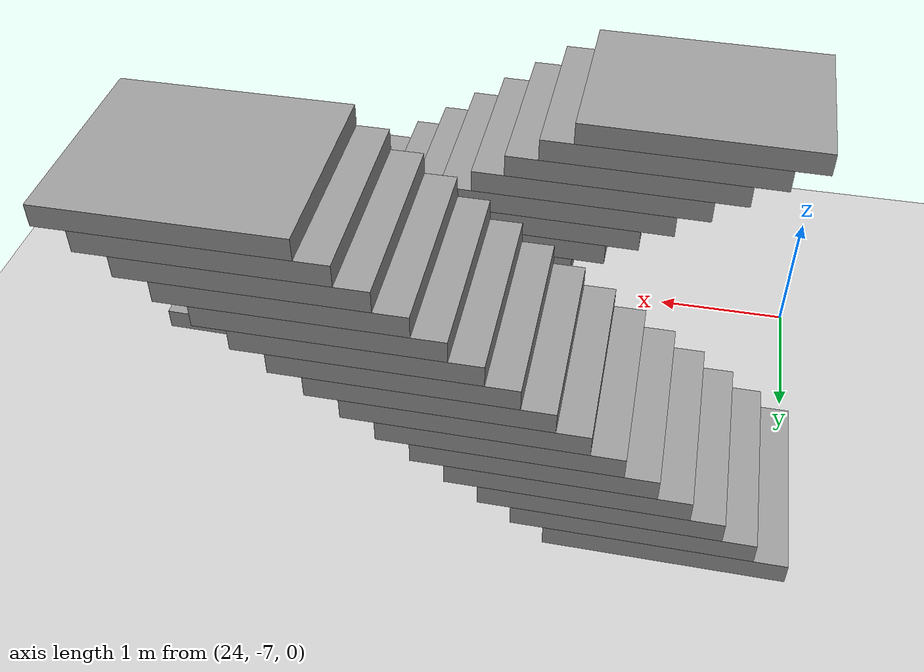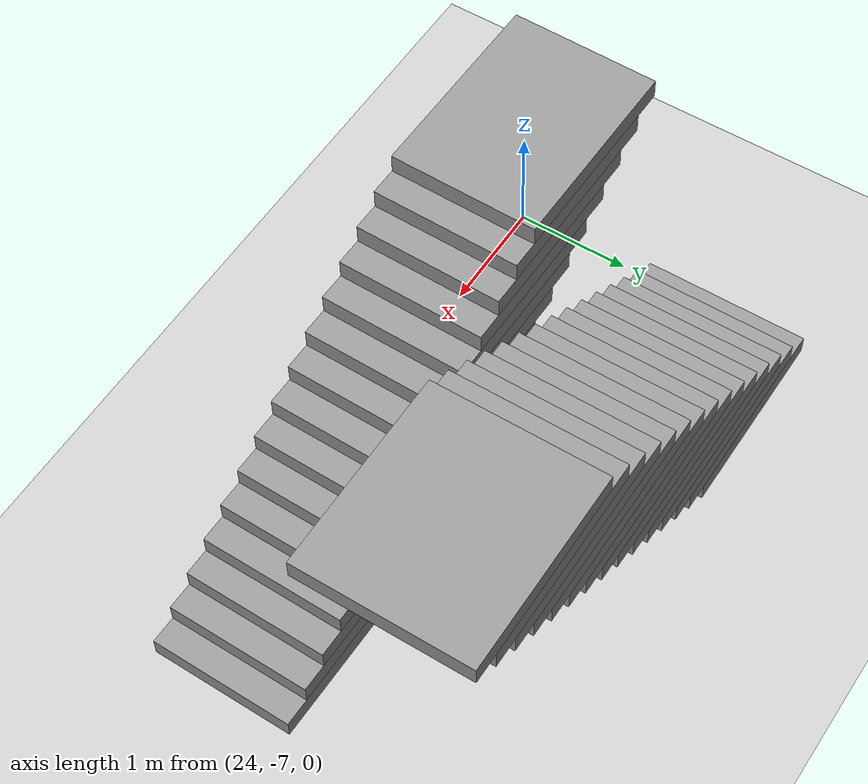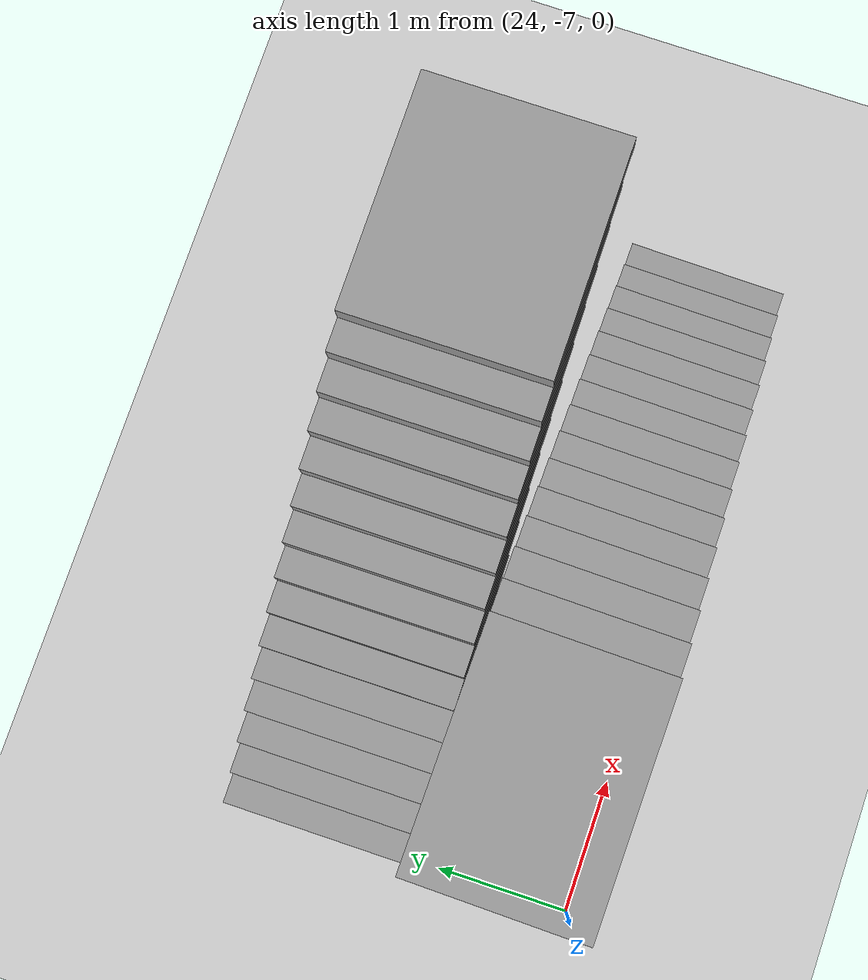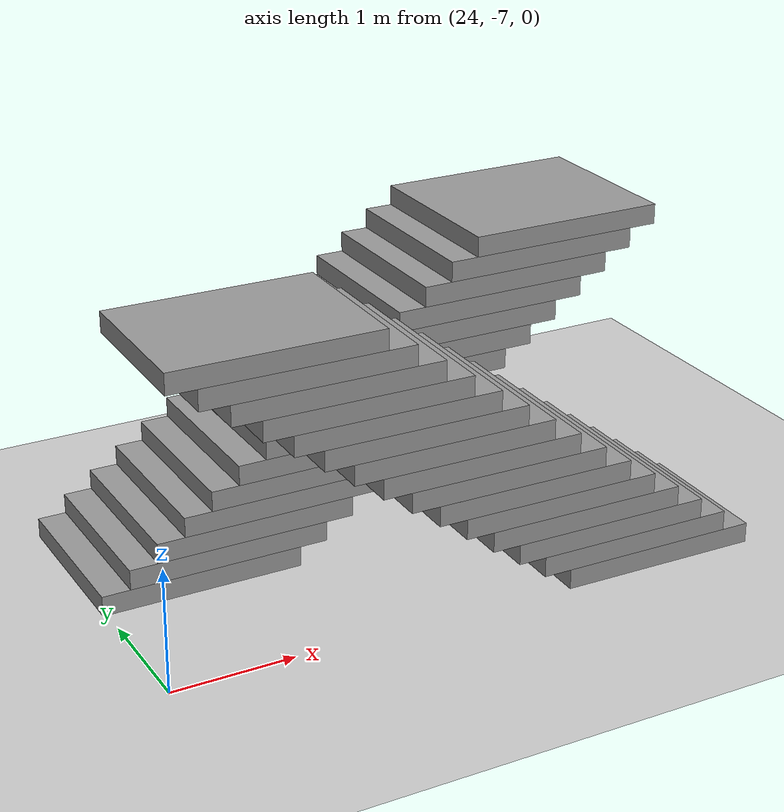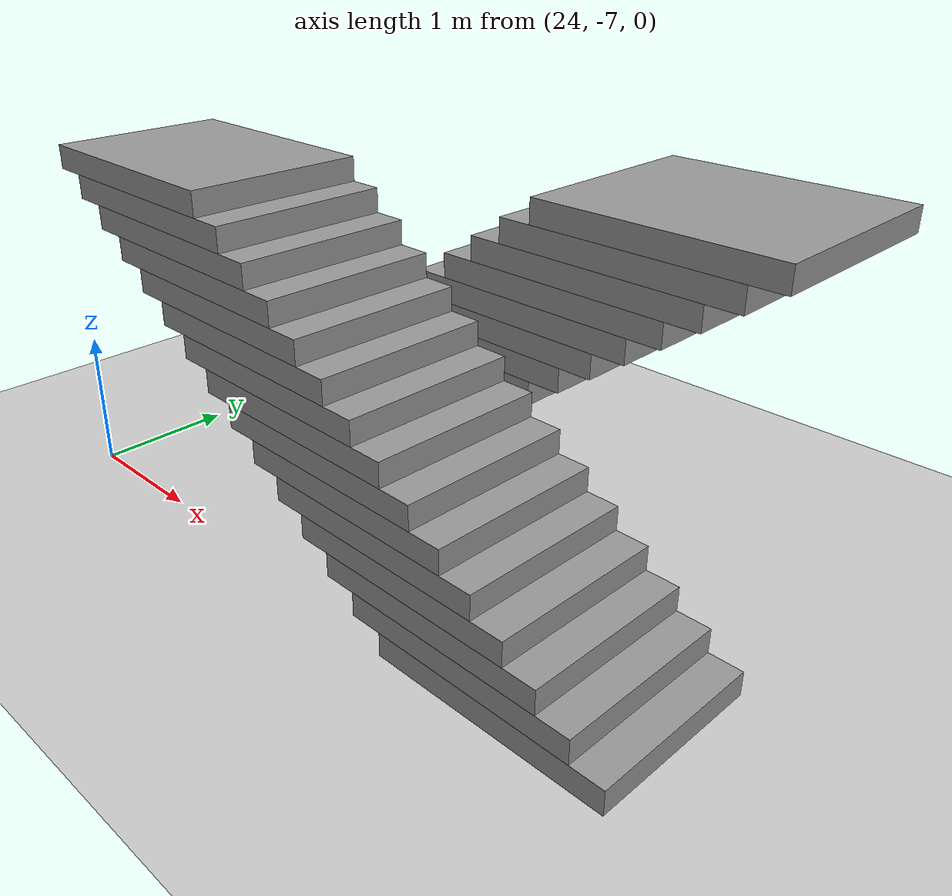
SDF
<sdf version="1.6">
 <world name="default">
  <model name="ground_plane">
   <static>1</static>
   <link name="link">
    <collision name="collision">
     <geometry><plane><normal>0 0 1</normal><size>100 100</size></plane></geometry>
     <surface><friction><ode><mu>100</mu><mu2>50</mu2></ode></friction></surface>
    </collision>
    <visual name="visual">
     <cast_shadows>0</cast_shadows>
     <geometry><plane><normal>0 0 1</normal><size>100 100</size></plane></geometry>
     <material>
      <script><uri>file://media/materials/scripts/gazebo.material</uri><name>Gazebo/Grey</name></script>
     </material>
    </visual>
   </link>
  </model>
  <model name="Staircase_0">
   <link name="Stairs_0">
    <inertial>
     <inertia><ixx>0</ixx><ixy>0</ixy><ixz>0</ixz><iyy>0</iyy><iyz>0</iyz><izz>0</izz></inertia>
     <mass>0</mass>
    </inertial>
    <pose>0.114971 -0.080794 0 0 -0 0</pose>
    <visual name="Stairs_0_Visual_1">
     <pose>-1.4 -0 0.25 0 -0 1.5708</pose>
     <geometry><box><size>1.44379 1.67338 0.166667</size></box></geometry>
     <material>
      <script><uri>file://media/materials/scripts/gazebo.material</uri><name>Gazebo/Grey</name></script>
      <ambient>1 1 1 1</ambient>
      <shader type="pixel"/>
     </material>
     <meta><layer>0</layer></meta>
    </visual>
    <visual name="Stairs_0_Visual_3">
     <pose>-0.933333 -0 0.583333 0 -0 1.5708</pose>
     <geometry><box><size>1.44379 1.67338 0.166667</size></box></geometry>
     <material>
      <script><uri>file://media/materials/scripts/gazebo.material</uri><name>Gazebo/Grey</name></script>
      <ambient>1 1 1 1</ambient>
      <shader type="pixel"/>
     </material>
     <meta><layer>0</layer></meta>
    </visual>
    <visual name="Stairs_0_Visual_5">
     <pose>-0.466667 0 0.916667 0 -0 1.5708</pose>
     <geometry><box><size>1.44379 1.67338 0.166667</size></box></geometry>
     <material>
      <script><uri>file://media/materials/scripts/gazebo.material</uri><name>Gazebo/Grey</name></script>
      <ambient>1 1 1 1</ambient>
      <shader type="pixel"/>
     </material>
     <meta><layer>0</layer></meta>
    </visual>
    <visual name="Stairs_0_Visual_4">
     <pose>-0.7 0 0.75 0 -0 1.5708</pose>
     <geometry><box><size>1.44379 1.67338 0.166667</size></box></geometry>
     <material>
      <script><uri>file://media/materials/scripts/gazebo.material</uri><name>Gazebo/Grey</name></script>
      <ambient>1 1 1 1</ambient>
      <shader type="pixel"/>
     </material>
     <meta><layer>0</layer></meta>
    </visual>
    <visual name="Stairs_0_Visual_9">
     <pose>0.466667 0 1.58333 0 -0 1.5708</pose>
     <geometry><box><size>1.44379 1.67338 0.166667</size></box></geometry>
     <material>
      <script><uri>file://media/materials/scripts/gazebo.material</uri><name>Gazebo/Grey</name></script>
      <ambient>1 1 1 1</ambient>
      <shader type="pixel"/>
     </material>
     <meta><layer>0</layer></meta>
    </visual>
    <visual name="Stairs_0_Visual_10">
     <pose>0.7 0 1.75 0 -0 1.5708</pose>
     <geometry><box><size>1.44379 1.67338 0.166667</size></box></geometry>
     <material>
      <script><uri>file://media/materials/scripts/gazebo.material</uri><name>Gazebo/Grey</name></script>
      <ambient>1 1 1 1</ambient>
      <shader type="pixel"/>
     </material>
     <meta><layer>0</layer></meta>
    </visual>
    <visual name="Stairs_0_Visual_11">
     <pose>0.933334 0 1.91667 0 -0 1.5708</pose>
     <geometry><box><size>1.44379 1.67338 0.166667</size></box></geometry>
     <material>
      <script><uri>file://media/materials/scripts/gazebo.material</uri><name>Gazebo/Grey</name></script>
      <ambient>1 1 1 1</ambient>
      <shader type="pixel"/>
     </material>
     <meta><layer>0</layer></meta>
    </visual>
    <visual name="Stairs_0_Visual_12">
     <pose>1.16667 0 2.08333 0 -0 1.5708</pose>
     <geometry><box><size>1.44379 1.67338 0.166667</size></box></geometry>
     <material>
      <script><uri>file://media/materials/scripts/gazebo.material</uri><name>Gazebo/Grey</name></script>
      <ambient>1 1 1 1</ambient>
      <shader type="pixel"/>
     </material>
     <meta><layer>0</layer></meta>
    </visual>
    <visual name="Stairs_0_Visual_13">
     <pose>1.4 0 2.25 0 -0 1.5708</pose>
     <geometry><box><size>1.44379 1.67338 0.166667</size></box></geometry>
     <material>
      <script><uri>file://media/materials/scripts/gazebo.material</uri><name>Gazebo/Grey</name></script>
      <ambient>1 1 1 1</ambient>
      <shader type="pixel"/>
     </material>
     <meta><layer>0</layer></meta>
    </visual>
    <visual name="Stairs_0_Visual_14">
     <pose>1.63333 0 2.41667 0 -0 1.5708</pose>
     <geometry><box><size>1.44379 1.67338 0.166667</size></box></geometry>
     <material>
      <script><uri>file://media/materials/scripts/gazebo.material</uri><name>Gazebo/Grey</name></script>
      <ambient>1 1 1 1</ambient>
      <shader type="pixel"/>
     </material>
     <meta><layer>0</layer></meta>
    </visual>
    <visual name="Stairs_0_Visual_7">
     <pose>0 0 1.25 0 -0 1.5708</pose>
     <geometry><box><size>1.44379 1.67338 0.166667</size></box></geometry>
     <material>
      <script><uri>file://media/materials/scripts/gazebo.material</uri><name>Gazebo/Grey</name></script>
      <ambient>1 1 1 1</ambient>
      <shader type="pixel"/>
     </material>
     <meta><layer>0</layer></meta>
    </visual>
    <visual name="Stairs_0_Visual_8">
     <pose>0.233333 0 1.41667 0 -0 1.5708</pose>
     <geometry><box><size>1.44379 1.67338 0.166667</size></box></geometry>
     <material>
      <script><uri>file://media/materials/scripts/gazebo.material</uri><name>Gazebo/Grey</name></script>
      <ambient>1 1 1 1</ambient>
      <shader type="pixel"/>
     </material>
     <meta><layer>0</layer></meta>
    </visual>
    <visual name="Stairs_0_Visual_6">
     <pose>-0.233333 0 1.08333 0 -0 1.5708</pose>
     <geometry><box><size>1.44379 1.67338 0.166667</size></box></geometry>
     <material>
      <script><uri>file://media/materials/scripts/gazebo.material</uri><name>Gazebo/Grey</name></script>
      <ambient>1 1 1 1</ambient>
      <shader type="pixel"/>
     </material>
     <meta><layer>0</layer></meta>
    </visual>
    <visual name="Stairs_0_Visual_0">
     <pose>-1.63333 -0 0.083333 0 -0 1.5708</pose>
     <geometry><box><size>1.44379 1.67338 0.166667</size></box></geometry>
     <material>
      <script><uri>file://media/materials/scripts/gazebo.material</uri><name>Gazebo/Grey</name></script>
      <ambient>1 1 1 1</ambient>
      <shader type="pixel"/>
     </material>
     <meta><layer>0</layer></meta>
    </visual>
    <visual name="Stairs_0_Visual_2">
     <pose>-1.16667 -0 0.416667 0 -0 1.5708</pose>
     <geometry><box><size>1.44379 1.67338 0.166667</size></box></geometry>
     <material>
      <script><uri>file://media/materials/scripts/gazebo.material</uri><name>Gazebo/Grey</name></script>
      <ambient>1 1 1 1</ambient>
      <shader type="pixel"/>
     </material>
     <meta><layer>0</layer></meta>
    </visual>
    <collision name="Stairs_0_Collision_0">
     <pose>-1.63333 0 0.083333 0 -0 1.5708</pose>
     <geometry><box><size>1.44379 1.67338 0.166667</size></box></geometry>
     <surface>
      <friction>
       <ode><mu>1</mu><mu2>1</mu2><fdir1>0 0 0</fdir1><slip1>0</slip1><slip2>0</slip2></ode>
       <torsional>
        <coefficient>1</coefficient>
        <patch_radius>0</patch_radius>
        <surface_radius>0</surface_radius>
        <use_patch_radius>1</use_patch_radius>
        <ode><slip>0</slip></ode>
       </torsional>
      </friction>
      <bounce><restitution_coefficient>0</restitution_coefficient><threshold>1e+06</threshold></bounce>
      <contact>
       <collide_without_contact>0</collide_without_contact>
       <collide_without_contact_bitmask>1</collide_without_contact_bitmask>
       <collide_bitmask>1</collide_bitmask>
       <ode>
        <soft_cfm>0</soft_cfm>
        <soft_erp>0.2</soft_erp>
        <kp>1e+13</kp>
        <kd>1</kd>
        <max_vel>0.01</max_vel>
        <min_depth>0</min_depth>
       </ode>
       <bullet>
        <split_impulse>1</split_impulse>
        <split_impulse_penetration_threshold>-0.01</split_impulse_penetration_threshold>
        <soft_cfm>0</soft_cfm>
        <soft_erp>0.2</soft_erp>
        <kp>1e+13</kp>
        <kd>1</kd>
       </bullet>
      </contact>
     </surface>
    </collision>
    <collision name="Stairs_0_Collision_1">
     <pose>-1.4 0 0.25 0 -0 1.5708</pose>
     <geometry><box><size>1.44379 1.67338 0.166667</size></box></geometry>
     <surface>
      <friction>
       <ode><mu>1</mu><mu2>1</mu2><fdir1>0 0 0</fdir1><slip1>0</slip1><slip2>0</slip2></ode>
       <torsional>
        <coefficient>1</coefficient>
        <patch_radius>0</patch_radius>
        <surface_radius>0</surface_radius>
        <use_patch_radius>1</use_patch_radius>
        <ode><slip>0</slip></ode>
       </torsional>
      </friction>
      <bounce><restitution_coefficient>0</restitution_coefficient><threshold>1e+06</threshold></bounce>
      <contact>
       <collide_without_contact>0</collide_without_contact>
       <collide_without_contact_bitmask>1</collide_without_contact_bitmask>
       <collide_bitmask>1</collide_bitmask>
       <ode>
        <soft_cfm>0</soft_cfm>
        <soft_erp>0.2</soft_erp>
        <kp>1e+13</kp>
        <kd>1</kd>
        <max_vel>0.01</max_vel>
        <min_depth>0</min_depth>
       </ode>
       <bullet>
        <split_impulse>1</split_impulse>
        <split_impulse_penetration_threshold>-0.01</split_impulse_penetration_threshold>
        <soft_cfm>0</soft_cfm>
        <soft_erp>0.2</soft_erp>
        <kp>1e+13</kp>
        <kd>1</kd>
       </bullet>
      </contact>
     </surface>
    </collision>
    <collision name="Stairs_0_Collision_2">
     <pose>-1.16667 0 0.416667 0 -0 1.5708</pose>
     <geometry><box><size>1.44379 1.67338 0.166667</size></box></geometry>
     <surface>
      <friction>
       <ode><mu>1</mu><mu2>1</mu2><fdir1>0 0 0</fdir1><slip1>0</slip1><slip2>0</slip2></ode>
       <torsional>
        <coefficient>1</coefficient>
        <patch_radius>0</patch_radius>
        <surface_radius>0</surface_radius>
        <use_patch_radius>1</use_patch_radius>
        <ode><slip>0</slip></ode>
       </torsional>
      </friction>
      <bounce><restitution_coefficient>0</restitution_coefficient><threshold>1e+06</threshold></bounce>
      <contact>
       <collide_without_contact>0</collide_without_contact>
       <collide_without_contact_bitmask>1</collide_without_contact_bitmask>
       <collide_bitmask>1</collide_bitmask>
       <ode>
        <soft_cfm>0</soft_cfm>
        <soft_erp>0.2</soft_erp>
        <kp>1e+13</kp>
        <kd>1</kd>
        <max_vel>0.01</max_vel>
        <min_depth>0</min_depth>
       </ode>
       <bullet>
        <split_impulse>1</split_impulse>
        <split_impulse_penetration_threshold>-0.01</split_impulse_penetration_threshold>
        <soft_cfm>0</soft_cfm>
        <soft_erp>0.2</soft_erp>
        <kp>1e+13</kp>
        <kd>1</kd>
       </bullet>
      </contact>
     </surface>
    </collision>
    <collision name="Stairs_0_Collision_3">
     <pose>-0.933333 0 0.583333 0 -0 1.5708</pose>
     <geometry><box><size>1.44379 1.67338 0.166667</size></box></geometry>
     <surface>
      <friction>
       <ode><mu>1</mu><mu2>1</mu2><fdir1>0 0 0</fdir1><slip1>0</slip1><slip2>0</slip2></ode>
       <torsional>
        <coefficient>1</coefficient>
        <patch_radius>0</patch_radius>
        <surface_radius>0</surface_radius>
        <use_patch_radius>1</use_patch_radius>
        <ode><slip>0</slip></ode>
       </torsional>
      </friction>
      <bounce><restitution_coefficient>0</restitution_coefficient><threshold>1e+06</threshold></bounce>
      <contact>
       <collide_without_contact>0</collide_without_contact>
       <collide_without_contact_bitmask>1</collide_without_contact_bitmask>
       <collide_bitmask>1</collide_bitmask>
       <ode>
        <soft_cfm>0</soft_cfm>
        <soft_erp>0.2</soft_erp>
        <kp>1e+13</kp>
        <kd>1</kd>
        <max_vel>0.01</max_vel>
        <min_depth>0</min_depth>
       </ode>
       <bullet>
        <split_impulse>1</split_impulse>
        <split_impulse_penetration_threshold>-0.01</split_impulse_penetration_threshold>
        <soft_cfm>0</soft_cfm>
        <soft_erp>0.2</soft_erp>
        <kp>1e+13</kp>
        <kd>1</kd>
       </bullet>
      </contact>
     </surface>
    </collision>
    <collision name="Stairs_0_Collision_4">
     <pose>-0.7 0 0.75 0 -0 1.5708</pose>
     <geometry><box><size>1.44379 1.67338 0.166667</size></box></geometry>
     <surface>
      <friction>
       <ode><mu>1</mu><mu2>1</mu2><fdir1>0 0 0</fdir1><slip1>0</slip1><slip2>0</slip2></ode>
       <torsional>
        <coefficient>1</coefficient>
        <patch_radius>0</patch_radius>
        <surface_radius>0</surface_radius>
        <use_patch_radius>1</use_patch_radius>
        <ode><slip>0</slip></ode>
       </torsional>
      </friction>
      <bounce><restitution_coefficient>0</restitution_coefficient><threshold>1e+06</threshold></bounce>
      <contact>
       <collide_without_contact>0</collide_without_contact>
       <collide_without_contact_bitmask>1</collide_without_contact_bitmask>
       <collide_bitmask>1</collide_bitmask>
       <ode>
        <soft_cfm>0</soft_cfm>
        <soft_erp>0.2</soft_erp>
        <kp>1e+13</kp>
        <kd>1</kd>
        <max_vel>0.01</max_vel>
        <min_depth>0</min_depth>
       </ode>
       <bullet>
        <split_impulse>1</split_impulse>
        <split_impulse_penetration_threshold>-0.01</split_impulse_penetration_threshold>
        <soft_cfm>0</soft_cfm>
        <soft_erp>0.2</soft_erp>
        <kp>1e+13</kp>
        <kd>1</kd>
       </bullet>
      </contact>
     </surface>
    </collision>
    <collision name="Stairs_0_Collision_5">
     <pose>-0.466667 0 0.916667 0 -0 1.5708</pose>
     <geometry><box><size>1.44379 1.67338 0.166667</size></box></geometry>
     <surface>
      <friction>
       <ode><mu>1</mu><mu2>1</mu2><fdir1>0 0 0</fdir1><slip1>0</slip1><slip2>0</slip2></ode>
       <torsional>
        <coefficient>1</coefficient>
        <patch_radius>0</patch_radius>
        <surface_radius>0</surface_radius>
        <use_patch_radius>1</use_patch_radius>
        <ode><slip>0</slip></ode>
       </torsional>
      </friction>
      <bounce><restitution_coefficient>0</restitution_coefficient><threshold>1e+06</threshold></bounce>
      <contact>
       <collide_without_contact>0</collide_without_contact>
       <collide_without_contact_bitmask>1</collide_without_contact_bitmask>
       <collide_bitmask>1</collide_bitmask>
       <ode>
        <soft_cfm>0</soft_cfm>
        <soft_erp>0.2</soft_erp>
        <kp>1e+13</kp>
        <kd>1</kd>
        <max_vel>0.01</max_vel>
        <min_depth>0</min_depth>
       </ode>
       <bullet>
        <split_impulse>1</split_impulse>
        <split_impulse_penetration_threshold>-0.01</split_impulse_penetration_threshold>
        <soft_cfm>0</soft_cfm>
        <soft_erp>0.2</soft_erp>
        <kp>1e+13</kp>
        <kd>1</kd>
       </bullet>
      </contact>
     </surface>
    </collision>
    <collision name="Stairs_0_Collision_6">
     <pose>-0.233333 0 1.08333 0 -0 1.5708</pose>
     <geometry><box><size>1.44379 1.67338 0.166667</size></box></geometry>
     <surface>
      <friction>
       <ode><mu>1</mu><mu2>1</mu2><fdir1>0 0 0</fdir1><slip1>0</slip1><slip2>0</slip2></ode>
       <torsional>
        <coefficient>1</coefficient>
        <patch_radius>0</patch_radius>
        <surface_radius>0</surface_radius>
        <use_patch_radius>1</use_patch_radius>
        <ode><slip>0</slip></ode>
       </torsional>
      </friction>
      <bounce><restitution_coefficient>0</restitution_coefficient><threshold>1e+06</threshold></bounce>
      <contact>
       <collide_without_contact>0</collide_without_contact>
       <collide_without_contact_bitmask>1</collide_without_contact_bitmask>
       <collide_bitmask>1</collide_bitmask>
       <ode>
        <soft_cfm>0</soft_cfm>
        <soft_erp>0.2</soft_erp>
        <kp>1e+13</kp>
        <kd>1</kd>
        <max_vel>0.01</max_vel>
        <min_depth>0</min_depth>
       </ode>
       <bullet>
        <split_impulse>1</split_impulse>
        <split_impulse_penetration_threshold>-0.01</split_impulse_penetration_threshold>
        <soft_cfm>0</soft_cfm>
        <soft_erp>0.2</soft_erp>
        <kp>1e+13</kp>
        <kd>1</kd>
       </bullet>
      </contact>
     </surface>
    </collision>
    <collision name="Stairs_0_Collision_7">
     <pose>0 0 1.25 0 -0 1.5708</pose>
     <geometry><box><size>1.44379 1.67338 0.166667</size></box></geometry>
     <surface>
      <friction>
       <ode><mu>1</mu><mu2>1</mu2><fdir1>0 0 0</fdir1><slip1>0</slip1><slip2>0</slip2></ode>
       <torsional>
        <coefficient>1</coefficient>
        <patch_radius>0</patch_radius>
        <surface_radius>0</surface_radius>
        <use_patch_radius>1</use_patch_radius>
        <ode><slip>0</slip></ode>
       </torsional>
      </friction>
      <bounce><restitution_coefficient>0</restitution_coefficient><threshold>1e+06</threshold></bounce>
      <contact>
       <collide_without_contact>0</collide_without_contact>
       <collide_without_contact_bitmask>1</collide_without_contact_bitmask>
       <collide_bitmask>1</collide_bitmask>
       <ode>
        <soft_cfm>0</soft_cfm>
        <soft_erp>0.2</soft_erp>
        <kp>1e+13</kp>
        <kd>1</kd>
        <max_vel>0.01</max_vel>
        <min_depth>0</min_depth>
       </ode>
       <bullet>
        <split_impulse>1</split_impulse>
        <split_impulse_penetration_threshold>-0.01</split_impulse_penetration_threshold>
        <soft_cfm>0</soft_cfm>
        <soft_erp>0.2</soft_erp>
        <kp>1e+13</kp>
        <kd>1</kd>
       </bullet>
      </contact>
     </surface>
    </collision>
    <collision name="Stairs_0_Collision_8">
     <pose>0.233333 0 1.41667 0 -0 1.5708</pose>
     <geometry><box><size>1.44379 1.67338 0.166667</size></box></geometry>
     <surface>
      <friction>
       <ode><mu>1</mu><mu2>1</mu2><fdir1>0 0 0</fdir1><slip1>0</slip1><slip2>0</slip2></ode>
       <torsional>
        <coefficient>1</coefficient>
        <patch_radius>0</patch_radius>
        <surface_radius>0</surface_radius>
        <use_patch_radius>1</use_patch_radius>
        <ode><slip>0</slip></ode>
       </torsional>
      </friction>
      <bounce><restitution_coefficient>0</restitution_coefficient><threshold>1e+06</threshold></bounce>
      <contact>
       <collide_without_contact>0</collide_without_contact>
       <collide_without_contact_bitmask>1</collide_without_contact_bitmask>
       <collide_bitmask>1</collide_bitmask>
       <ode>
        <soft_cfm>0</soft_cfm>
        <soft_erp>0.2</soft_erp>
        <kp>1e+13</kp>
        <kd>1</kd>
        <max_vel>0.01</max_vel>
        <min_depth>0</min_depth>
       </ode>
       <bullet>
        <split_impulse>1</split_impulse>
        <split_impulse_penetration_threshold>-0.01</split_impulse_penetration_threshold>
        <soft_cfm>0</soft_cfm>
        <soft_erp>0.2</soft_erp>
        <kp>1e+13</kp>
        <kd>1</kd>
       </bullet>
      </contact>
     </surface>
    </collision>
    <collision name="Stairs_0_Collision_9">
     <pose>0.466667 0 1.58333 0 -0 1.5708</pose>
     <geometry><box><size>1.44379 1.67338 0.166667</size></box></geometry>
     <surface>
      <friction>
       <ode><mu>1</mu><mu2>1</mu2><fdir1>0 0 0</fdir1><slip1>0</slip1><slip2>0</slip2></ode>
       <torsional>
        <coefficient>1</coefficient>
        <patch_radius>0</patch_radius>
        <surface_radius>0</surface_radius>
        <use_patch_radius>1</use_patch_radius>
        <ode><slip>0</slip></ode>
       </torsional>
      </friction>
      <bounce><restitution_coefficient>0</restitution_coefficient><threshold>1e+06</threshold></bounce>
      <contact>
       <collide_without_contact>0</collide_without_contact>
       <collide_without_contact_bitmask>1</collide_without_contact_bitmask>
       <collide_bitmask>1</collide_bitmask>
       <ode>
        <soft_cfm>0</soft_cfm>
        <soft_erp>0.2</soft_erp>
        <kp>1e+13</kp>
        <kd>1</kd>
        <max_vel>0.01</max_vel>
        <min_depth>0</min_depth>
       </ode>
       <bullet>
        <split_impulse>1</split_impulse>
        <split_impulse_penetration_threshold>-0.01</split_impulse_penetration_threshold>
        <soft_cfm>0</soft_cfm>
        <soft_erp>0.2</soft_erp>
        <kp>1e+13</kp>
        <kd>1</kd>
       </bullet>
      </contact>
     </surface>
    </collision>
    <collision name="Stairs_0_Collision_10">
     <pose>0.7 0 1.75 0 -0 1.5708</pose>
     <geometry><box><size>1.44379 1.67338 0.166667</size></box></geometry>
     <surface>
      <friction>
       <ode><mu>1</mu><mu2>1</mu2><fdir1>0 0 0</fdir1><slip1>0</slip1><slip2>0</slip2></ode>
       <torsional>
        <coefficient>1</coefficient>
        <patch_radius>0</patch_radius>
        <surface_radius>0</surface_radius>
        <use_patch_radius>1</use_patch_radius>
        <ode><slip>0</slip></ode>
       </torsional>
      </friction>
      <bounce><restitution_coefficient>0</restitution_coefficient><threshold>1e+06</threshold></bounce>
      <contact>
       <collide_without_contact>0</collide_without_contact>
       <collide_without_contact_bitmask>1</collide_without_contact_bitmask>
       <collide_bitmask>1</collide_bitmask>
       <ode>
        <soft_cfm>0</soft_cfm>
        <soft_erp>0.2</soft_erp>
        <kp>1e+13</kp>
        <kd>1</kd>
        <max_vel>0.01</max_vel>
        <min_depth>0</min_depth>
       </ode>
       <bullet>
        <split_impulse>1</split_impulse>
        <split_impulse_penetration_threshold>-0.01</split_impulse_penetration_threshold>
        <soft_cfm>0</soft_cfm>
        <soft_erp>0.2</soft_erp>
        <kp>1e+13</kp>
        <kd>1</kd>
       </bullet>
      </contact>
     </surface>
    </collision>
    <collision name="Stairs_0_Collision_11">
     <pose>0.933334 0 1.91667 0 -0 1.5708</pose>
     <geometry><box><size>1.44379 1.67338 0.166667</size></box></geometry>
     <surface>
      <friction>
       <ode><mu>1</mu><mu2>1</mu2><fdir1>0 0 0</fdir1><slip1>0</slip1><slip2>0</slip2></ode>
       <torsional>
        <coefficient>1</coefficient>
        <patch_radius>0</patch_radius>
        <surface_radius>0</surface_radius>
        <use_patch_radius>1</use_patch_radius>
        <ode><slip>0</slip></ode>
       </torsional>
      </friction>
      <bounce><restitution_coefficient>0</restitution_coefficient><threshold>1e+06</threshold></bounce>
      <contact>
       <collide_without_contact>0</collide_without_contact>
       <collide_without_contact_bitmask>1</collide_without_contact_bitmask>
       <collide_bitmask>1</collide_bitmask>
       <ode>
        <soft_cfm>0</soft_cfm>
        <soft_erp>0.2</soft_erp>
        <kp>1e+13</kp>
        <kd>1</kd>
        <max_vel>0.01</max_vel>
        <min_depth>0</min_depth>
       </ode>
       <bullet>
        <split_impulse>1</split_impulse>
        <split_impulse_penetration_threshold>-0.01</split_impulse_penetration_threshold>
        <soft_cfm>0</soft_cfm>
        <soft_erp>0.2</soft_erp>
        <kp>1e+13</kp>
        <kd>1</kd>
       </bullet>
      </contact>
     </surface>
    </collision>
    <collision name="Stairs_0_Collision_12">
     <pose>1.16667 0 2.08333 0 -0 1.5708</pose>
     <geometry><box><size>1.44379 1.67338 0.166667</size></box></geometry>
     <surface>
      <friction>
       <ode><mu>1</mu><mu2>1</mu2><fdir1>0 0 0</fdir1><slip1>0</slip1><slip2>0</slip2></ode>
       <torsional>
        <coefficient>1</coefficient>
        <patch_radius>0</patch_radius>
        <surface_radius>0</surface_radius>
        <use_patch_radius>1</use_patch_radius>
        <ode><slip>0</slip></ode>
       </torsional>
      </friction>
      <bounce><restitution_coefficient>0</restitution_coefficient><threshold>1e+06</threshold></bounce>
      <contact>
       <collide_without_contact>0</collide_without_contact>
       <collide_without_contact_bitmask>1</collide_without_contact_bitmask>
       <collide_bitmask>1</collide_bitmask>
       <ode>
        <soft_cfm>0</soft_cfm>
        <soft_erp>0.2</soft_erp>
        <kp>1e+13</kp>
        <kd>1</kd>
        <max_vel>0.01</max_vel>
        <min_depth>0</min_depth>
       </ode>
       <bullet>
        <split_impulse>1</split_impulse>
        <split_impulse_penetration_threshold>-0.01</split_impulse_penetration_threshold>
        <soft_cfm>0</soft_cfm>
        <soft_erp>0.2</soft_erp>
        <kp>1e+13</kp>
        <kd>1</kd>
       </bullet>
      </contact>
     </surface>
    </collision>
    <collision name="Stairs_0_Collision_13">
     <pose>1.4 0 2.25 0 -0 1.5708</pose>
     <geometry><box><size>1.44379 1.67338 0.166667</size></box></geometry>
     <surface>
      <friction>
       <ode><mu>1</mu><mu2>1</mu2><fdir1>0 0 0</fdir1><slip1>0</slip1><slip2>0</slip2></ode>
       <torsional>
        <coefficient>1</coefficient>
        <patch_radius>0</patch_radius>
        <surface_radius>0</surface_radius>
        <use_patch_radius>1</use_patch_radius>
        <ode><slip>0</slip></ode>
       </torsional>
      </friction>
      <bounce><restitution_coefficient>0</restitution_coefficient><threshold>1e+06</threshold></bounce>
      <contact>
       <collide_without_contact>0</collide_without_contact>
       <collide_without_contact_bitmask>1</collide_without_contact_bitmask>
       <collide_bitmask>1</collide_bitmask>
       <ode>
        <soft_cfm>0</soft_cfm>
        <soft_erp>0.2</soft_erp>
        <kp>1e+13</kp>
        <kd>1</kd>
        <max_vel>0.01</max_vel>
        <min_depth>0</min_depth>
       </ode>
       <bullet>
        <split_impulse>1</split_impulse>
        <split_impulse_penetration_threshold>-0.01</split_impulse_penetration_threshold>
        <soft_cfm>0</soft_cfm>
        <soft_erp>0.2</soft_erp>
        <kp>1e+13</kp>
        <kd>1</kd>
       </bullet>
      </contact>
     </surface>
    </collision>
    <collision name="Stairs_0_Collision_14">
     <pose>1.63333 0 2.41667 0 -0 1.5708</pose>
     <geometry><box><size>1.44379 1.67338 0.166667</size></box></geometry>
     <surface>
      <friction>
       <ode><mu>1</mu><mu2>1</mu2><fdir1>0 0 0</fdir1><slip1>0</slip1><slip2>0</slip2></ode>
       <torsional>
        <coefficient>1</coefficient>
        <patch_radius>0</patch_radius>
        <surface_radius>0</surface_radius>
        <use_patch_radius>1</use_patch_radius>
        <ode><slip>0</slip></ode>
       </torsional>
      </friction>
      <bounce><restitution_coefficient>0</restitution_coefficient><threshold>1e+06</threshold></bounce>
      <contact>
       <collide_without_contact>0</collide_without_contact>
       <collide_without_contact_bitmask>1</collide_without_contact_bitmask>
       <collide_bitmask>1</collide_bitmask>
       <ode>
        <soft_cfm>0</soft_cfm>
        <soft_erp>0.2</soft_erp>
        <kp>1e+13</kp>
        <kd>1</kd>
        <max_vel>0.01</max_vel>
        <min_depth>0</min_depth>
       </ode>
       <bullet>
        <split_impulse>1</split_impulse>
        <split_impulse_penetration_threshold>-0.01</split_impulse_penetration_threshold>
        <soft_cfm>0</soft_cfm>
        <soft_erp>0.2</soft_erp>
        <kp>1e+13</kp>
        <kd>1</kd>
       </bullet>
      </contact>
     </surface>
    </collision>
   </link>
   <link name="Stairs_0_clone">
    <inertial>
     <inertia><ixx>0</ixx><ixy>0</ixy><ixz>0</ixz><iyy>0</iyy><iyz>0</iyz><izz>0</izz></inertia>
     <mass>0</mass>
    </inertial>
    <pose>0.218796 -1.50654 0 0 -0 3.12607</pose>
    <visual name="Stairs_0_Visual_6">
     <pose>-0.233333 0 1.08333 0 -0 1.5708</pose>
     <geometry><box><size>1.23809 1.6769 0.166667</size></box></geometry>
     <material>
      <script><uri>file://media/materials/scripts/gazebo.material</uri><name>Gazebo/Grey</name></script>
      <ambient>1 1 1 1</ambient>
      <shader type="pixel"/>
     </material>
     <meta><layer>0</layer></meta>
    </visual>
    <visual name="Stairs_0_Visual_2">
     <pose>-1.16667 -0 0.416667 0 -0 1.5708</pose>
     <geometry><box><size>1.23809 1.6769 0.166667</size></box></geometry>
     <material>
      <script><uri>file://media/materials/scripts/gazebo.material</uri><name>Gazebo/Grey</name></script>
      <ambient>1 1 1 1</ambient>
      <shader type="pixel"/>
     </material>
     <meta><layer>0</layer></meta>
    </visual>
    <visual name="Stairs_0_Visual_9">
     <pose>0.466667 0 1.58333 0 -0 1.5708</pose>
     <geometry><box><size>1.23809 1.6769 0.166667</size></box></geometry>
     <material>
      <script><uri>file://media/materials/scripts/gazebo.material</uri><name>Gazebo/Grey</name></script>
      <ambient>1 1 1 1</ambient>
      <shader type="pixel"/>
     </material>
     <meta><layer>0</layer></meta>
    </visual>
    <visual name="Stairs_0_Visual_3">
     <pose>-0.933333 -0 0.583333 0 -0 1.5708</pose>
     <geometry><box><size>1.23809 1.6769 0.166667</size></box></geometry>
     <material>
      <script><uri>file://media/materials/scripts/gazebo.material</uri><name>Gazebo/Grey</name></script>
      <ambient>1 1 1 1</ambient>
      <shader type="pixel"/>
     </material>
     <meta><layer>0</layer></meta>
    </visual>
    <visual name="Stairs_0_Visual_0">
     <pose>-1.63333 -0 0.083333 0 -0 1.5708</pose>
     <geometry><box><size>1.23809 1.6769 0.166667</size></box></geometry>
     <material>
      <script><uri>file://media/materials/scripts/gazebo.material</uri><name>Gazebo/Grey</name></script>
      <ambient>1 1 1 1</ambient>
      <shader type="pixel"/>
     </material>
     <meta><layer>0</layer></meta>
    </visual>
    <visual name="Stairs_0_Visual_14">
     <pose>1.63333 0 2.41667 0 -0 1.5708</pose>
     <geometry><box><size>1.23809 1.6769 0.166667</size></box></geometry>
     <material>
      <script><uri>file://media/materials/scripts/gazebo.material</uri><name>Gazebo/Grey</name></script>
      <ambient>1 1 1 1</ambient>
      <shader type="pixel"/>
     </material>
     <meta><layer>0</layer></meta>
    </visual>
    <visual name="Stairs_0_Visual_10">
     <pose>0.7 0 1.75 0 -0 1.5708</pose>
     <geometry><box><size>1.23809 1.6769 0.166667</size></box></geometry>
     <material>
      <script><uri>file://media/materials/scripts/gazebo.material</uri><name>Gazebo/Grey</name></script>
      <ambient>1 1 1 1</ambient>
      <shader type="pixel"/>
     </material>
     <meta><layer>0</layer></meta>
    </visual>
    <visual name="Stairs_0_Visual_4">
     <pose>-0.7 0 0.75 0 -0 1.5708</pose>
     <geometry><box><size>1.23809 1.6769 0.166667</size></box></geometry>
     <material>
      <script><uri>file://media/materials/scripts/gazebo.material</uri><name>Gazebo/Grey</name></script>
      <ambient>1 1 1 1</ambient>
      <shader type="pixel"/>
     </material>
     <meta><layer>0</layer></meta>
    </visual>
    <visual name="Stairs_0_Visual_13">
     <pose>1.4 0 2.25 0 -0 1.5708</pose>
     <geometry><box><size>1.23809 1.6769 0.166667</size></box></geometry>
     <material>
      <script><uri>file://media/materials/scripts/gazebo.material</uri><name>Gazebo/Grey</name></script>
      <ambient>1 1 1 1</ambient>
      <shader type="pixel"/>
     </material>
     <meta><layer>0</layer></meta>
    </visual>
    <visual name="Stairs_0_Visual_1">
     <pose>-1.4 -0 0.25 0 -0 1.5708</pose>
     <geometry><box><size>1.23809 1.6769 0.166667</size></box></geometry>
     <material>
      <script><uri>file://media/materials/scripts/gazebo.material</uri><name>Gazebo/Grey</name></script>
      <ambient>1 1 1 1</ambient>
      <shader type="pixel"/>
     </material>
     <meta><layer>0</layer></meta>
    </visual>
    <visual name="Stairs_0_Visual_8">
     <pose>0.233333 0 1.41667 0 -0 1.5708</pose>
     <geometry><box><size>1.23809 1.6769 0.166667</size></box></geometry>
     <material>
      <script><uri>file://media/materials/scripts/gazebo.material</uri><name>Gazebo/Grey</name></script>
      <ambient>1 1 1 1</ambient>
      <shader type="pixel"/>
     </material>
     <meta><layer>0</layer></meta>
    </visual>
    <visual name="Stairs_0_Visual_11">
     <pose>0.933334 0 1.91667 0 -0 1.5708</pose>
     <geometry><box><size>1.23809 1.6769 0.166667</size></box></geometry>
     <material>
      <script><uri>file://media/materials/scripts/gazebo.material</uri><name>Gazebo/Grey</name></script>
      <ambient>1 1 1 1</ambient>
      <shader type="pixel"/>
     </material>
     <meta><layer>0</layer></meta>
    </visual>
    <visual name="Stairs_0_Visual_5">
     <pose>-0.466667 0 0.916667 0 -0 1.5708</pose>
     <geometry><box><size>1.23809 1.6769 0.166667</size></box></geometry>
     <material>
      <script><uri>file://media/materials/scripts/gazebo.material</uri><name>Gazebo/Grey</name></script>
      <ambient>1 1 1 1</ambient>
      <shader type="pixel"/>
     </material>
     <meta><layer>0</layer></meta>
    </visual>
    <visual name="Stairs_0_Visual_7">
     <pose>0 0 1.25 0 -0 1.5708</pose>
     <geometry><box><size>1.23809 1.6769 0.166667</size></box></geometry>
     <material>
      <script><uri>file://media/materials/scripts/gazebo.material</uri><name>Gazebo/Grey</name></script>
      <ambient>1 1 1 1</ambient>
      <shader type="pixel"/>
     </material>
     <meta><layer>0</layer></meta>
    </visual>
    <visual name="Stairs_0_Visual_12">
     <pose>1.16667 0 2.08333 0 -0 1.5708</pose>
     <geometry><box><size>1.23809 1.6769 0.166667</size></box></geometry>
     <material>
      <script><uri>file://media/materials/scripts/gazebo.material</uri><name>Gazebo/Grey</name></script>
      <ambient>1 1 1 1</ambient>
      <shader type="pixel"/>
     </material>
     <meta><layer>0</layer></meta>
    </visual>
    <collision name="Stairs_0_Collision_11">
     <pose>0.933334 0 1.91667 0 -0 1.5708</pose>
     <geometry><box><size>1.23809 1.6769 0.166667</size></box></geometry>
     <surface>
      <friction>
       <ode><mu>1</mu><mu2>1</mu2><fdir1>0 0 0</fdir1><slip1>0</slip1><slip2>0</slip2></ode>
       <torsional>
        <coefficient>1</coefficient>
        <patch_radius>0</patch_radius>
        <surface_radius>0</surface_radius>
        <use_patch_radius>1</use_patch_radius>
        <ode><slip>0</slip></ode>
       </torsional>
      </friction>
      <bounce><restitution_coefficient>0</restitution_coefficient><threshold>1e+06</threshold></bounce>
      <contact>
       <collide_without_contact>0</collide_without_contact>
       <collide_without_contact_bitmask>1</collide_without_contact_bitmask>
       <collide_bitmask>1</collide_bitmask>
       <ode>
        <soft_cfm>0</soft_cfm>
        <soft_erp>0.2</soft_erp>
        <kp>1e+13</kp>
        <kd>1</kd>
        <max_vel>0.01</max_vel>
        <min_depth>0</min_depth>
       </ode>
       <bullet>
        <split_impulse>1</split_impulse>
        <split_impulse_penetration_threshold>-0.01</split_impulse_penetration_threshold>
        <soft_cfm>0</soft_cfm>
        <soft_erp>0.2</soft_erp>
        <kp>1e+13</kp>
        <kd>1</kd>
       </bullet>
      </contact>
     </surface>
    </collision>
    <collision name="Stairs_0_Collision_7">
     <pose>0 0 1.25 0 -0 1.5708</pose>
     <geometry><box><size>1.23809 1.6769 0.166667</size></box></geometry>
     <surface>
      <friction>
       <ode><mu>1</mu><mu2>1</mu2><fdir1>0 0 0</fdir1><slip1>0</slip1><slip2>0</slip2></ode>
       <torsional>
        <coefficient>1</coefficient>
        <patch_radius>0</patch_radius>
        <surface_radius>0</surface_radius>
        <use_patch_radius>1</use_patch_radius>
        <ode><slip>0</slip></ode>
       </torsional>
      </friction>
      <bounce><restitution_coefficient>0</restitution_coefficient><threshold>1e+06</threshold></bounce>
      <contact>
       <collide_without_contact>0</collide_without_contact>
       <collide_without_contact_bitmask>1</collide_without_contact_bitmask>
       <collide_bitmask>1</collide_bitmask>
       <ode>
        <soft_cfm>0</soft_cfm>
        <soft_erp>0.2</soft_erp>
        <kp>1e+13</kp>
        <kd>1</kd>
        <max_vel>0.01</max_vel>
        <min_depth>0</min_depth>
       </ode>
       <bullet>
        <split_impulse>1</split_impulse>
        <split_impulse_penetration_threshold>-0.01</split_impulse_penetration_threshold>
        <soft_cfm>0</soft_cfm>
        <soft_erp>0.2</soft_erp>
        <kp>1e+13</kp>
        <kd>1</kd>
       </bullet>
      </contact>
     </surface>
    </collision>
    <collision name="Stairs_0_Collision_14">
     <pose>1.63333 0 2.41667 0 -0 1.5708</pose>
     <geometry><box><size>1.23809 1.6769 0.166667</size></box></geometry>
     <surface>
      <friction>
       <ode><mu>1</mu><mu2>1</mu2><fdir1>0 0 0</fdir1><slip1>0</slip1><slip2>0</slip2></ode>
       <torsional>
        <coefficient>1</coefficient>
        <patch_radius>0</patch_radius>
        <surface_radius>0</surface_radius>
        <use_patch_radius>1</use_patch_radius>
        <ode><slip>0</slip></ode>
       </torsional>
      </friction>
      <bounce><restitution_coefficient>0</restitution_coefficient><threshold>1e+06</threshold></bounce>
      <contact>
       <collide_without_contact>0</collide_without_contact>
       <collide_without_contact_bitmask>1</collide_without_contact_bitmask>
       <collide_bitmask>1</collide_bitmask>
       <ode>
        <soft_cfm>0</soft_cfm>
        <soft_erp>0.2</soft_erp>
        <kp>1e+13</kp>
        <kd>1</kd>
        <max_vel>0.01</max_vel>
        <min_depth>0</min_depth>
       </ode>
       <bullet>
        <split_impulse>1</split_impulse>
        <split_impulse_penetration_threshold>-0.01</split_impulse_penetration_threshold>
        <soft_cfm>0</soft_cfm>
        <soft_erp>0.2</soft_erp>
        <kp>1e+13</kp>
        <kd>1</kd>
       </bullet>
      </contact>
     </surface>
    </collision>
    <collision name="Stairs_0_Collision_6">
     <pose>-0.233333 0 1.08333 0 -0 1.5708</pose>
     <geometry><box><size>1.23809 1.6769 0.166667</size></box></geometry>
     <surface>
      <friction>
       <ode><mu>1</mu><mu2>1</mu2><fdir1>0 0 0</fdir1><slip1>0</slip1><slip2>0</slip2></ode>
       <torsional>
        <coefficient>1</coefficient>
        <patch_radius>0</patch_radius>
        <surface_radius>0</surface_radius>
        <use_patch_radius>1</use_patch_radius>
        <ode><slip>0</slip></ode>
       </torsional>
      </friction>
      <bounce><restitution_coefficient>0</restitution_coefficient><threshold>1e+06</threshold></bounce>
      <contact>
       <collide_without_contact>0</collide_without_contact>
       <collide_without_contact_bitmask>1</collide_without_contact_bitmask>
       <collide_bitmask>1</collide_bitmask>
       <ode>
        <soft_cfm>0</soft_cfm>
        <soft_erp>0.2</soft_erp>
        <kp>1e+13</kp>
        <kd>1</kd>
        <max_vel>0.01</max_vel>
        <min_depth>0</min_depth>
       </ode>
       <bullet>
        <split_impulse>1</split_impulse>
        <split_impulse_penetration_threshold>-0.01</split_impulse_penetration_threshold>
        <soft_cfm>0</soft_cfm>
        <soft_erp>0.2</soft_erp>
        <kp>1e+13</kp>
        <kd>1</kd>
       </bullet>
      </contact>
     </surface>
    </collision>
    <collision name="Stairs_0_Collision_10">
     <pose>0.7 0 1.75 0 -0 1.5708</pose>
     <geometry><box><size>1.23809 1.6769 0.166667</size></box></geometry>
     <surface>
      <friction>
       <ode><mu>1</mu><mu2>1</mu2><fdir1>0 0 0</fdir1><slip1>0</slip1><slip2>0</slip2></ode>
       <torsional>
        <coefficient>1</coefficient>
        <patch_radius>0</patch_radius>
        <surface_radius>0</surface_radius>
        <use_patch_radius>1</use_patch_radius>
        <ode><slip>0</slip></ode>
       </torsional>
      </friction>
      <bounce><restitution_coefficient>0</restitution_coefficient><threshold>1e+06</threshold></bounce>
      <contact>
       <collide_without_contact>0</collide_without_contact>
       <collide_without_contact_bitmask>1</collide_without_contact_bitmask>
       <collide_bitmask>1</collide_bitmask>
       <ode>
        <soft_cfm>0</soft_cfm>
        <soft_erp>0.2</soft_erp>
        <kp>1e+13</kp>
        <kd>1</kd>
        <max_vel>0.01</max_vel>
        <min_depth>0</min_depth>
       </ode>
       <bullet>
        <split_impulse>1</split_impulse>
        <split_impulse_penetration_threshold>-0.01</split_impulse_penetration_threshold>
        <soft_cfm>0</soft_cfm>
        <soft_erp>0.2</soft_erp>
        <kp>1e+13</kp>
        <kd>1</kd>
       </bullet>
      </contact>
     </surface>
    </collision>
    <collision name="Stairs_0_Collision_3">
     <pose>-0.933333 0 0.583333 0 -0 1.5708</pose>
     <geometry><box><size>1.23809 1.6769 0.166667</size></box></geometry>
     <surface>
      <friction>
       <ode><mu>1</mu><mu2>1</mu2><fdir1>0 0 0</fdir1><slip1>0</slip1><slip2>0</slip2></ode>
       <torsional>
        <coefficient>1</coefficient>
        <patch_radius>0</patch_radius>
        <surface_radius>0</surface_radius>
        <use_patch_radius>1</use_patch_radius>
        <ode><slip>0</slip></ode>
       </torsional>
      </friction>
      <bounce><restitution_coefficient>0</restitution_coefficient><threshold>1e+06</threshold></bounce>
      <contact>
       <collide_without_contact>0</collide_without_contact>
       <collide_without_contact_bitmask>1</collide_without_contact_bitmask>
       <collide_bitmask>1</collide_bitmask>
       <ode>
        <soft_cfm>0</soft_cfm>
        <soft_erp>0.2</soft_erp>
        <kp>1e+13</kp>
        <kd>1</kd>
        <max_vel>0.01</max_vel>
        <min_depth>0</min_depth>
       </ode>
       <bullet>
        <split_impulse>1</split_impulse>
        <split_impulse_penetration_threshold>-0.01</split_impulse_penetration_threshold>
        <soft_cfm>0</soft_cfm>
        <soft_erp>0.2</soft_erp>
        <kp>1e+13</kp>
        <kd>1</kd>
       </bullet>
      </contact>
     </surface>
    </collision>
    <collision name="Stairs_0_Collision_0">
     <pose>-1.63333 0 0.083333 0 -0 1.5708</pose>
     <geometry><box><size>1.23809 1.6769 0.166667</size></box></geometry>
     <surface>
      <friction>
       <ode><mu>1</mu><mu2>1</mu2><fdir1>0 0 0</fdir1><slip1>0</slip1><slip2>0</slip2></ode>
       <torsional>
        <coefficient>1</coefficient>
        <patch_radius>0</patch_radius>
        <surface_radius>0</surface_radius>
        <use_patch_radius>1</use_patch_radius>
        <ode><slip>0</slip></ode>
       </torsional>
      </friction>
      <bounce><restitution_coefficient>0</restitution_coefficient><threshold>1e+06</threshold></bounce>
      <contact>
       <collide_without_contact>0</collide_without_contact>
       <collide_without_contact_bitmask>1</collide_without_contact_bitmask>
       <collide_bitmask>1</collide_bitmask>
       <ode>
        <soft_cfm>0</soft_cfm>
        <soft_erp>0.2</soft_erp>
        <kp>1e+13</kp>
        <kd>1</kd>
        <max_vel>0.01</max_vel>
        <min_depth>0</min_depth>
       </ode>
       <bullet>
        <split_impulse>1</split_impulse>
        <split_impulse_penetration_threshold>-0.01</split_impulse_penetration_threshold>
        <soft_cfm>0</soft_cfm>
        <soft_erp>0.2</soft_erp>
        <kp>1e+13</kp>
        <kd>1</kd>
       </bullet>
      </contact>
     </surface>
    </collision>
    <collision name="Stairs_0_Collision_8">
     <pose>0.233333 0 1.41667 0 -0 1.5708</pose>
     <geometry><box><size>1.23809 1.6769 0.166667</size></box></geometry>
     <surface>
      <friction>
       <ode><mu>1</mu><mu2>1</mu2><fdir1>0 0 0</fdir1><slip1>0</slip1><slip2>0</slip2></ode>
       <torsional>
        <coefficient>1</coefficient>
        <patch_radius>0</patch_radius>
        <surface_radius>0</surface_radius>
        <use_patch_radius>1</use_patch_radius>
        <ode><slip>0</slip></ode>
       </torsional>
      </friction>
      <bounce><restitution_coefficient>0</restitution_coefficient><threshold>1e+06</threshold></bounce>
      <contact>
       <collide_without_contact>0</collide_without_contact>
       <collide_without_contact_bitmask>1</collide_without_contact_bitmask>
       <collide_bitmask>1</collide_bitmask>
       <ode>
        <soft_cfm>0</soft_cfm>
        <soft_erp>0.2</soft_erp>
        <kp>1e+13</kp>
        <kd>1</kd>
        <max_vel>0.01</max_vel>
        <min_depth>0</min_depth>
       </ode>
       <bullet>
        <split_impulse>1</split_impulse>
        <split_impulse_penetration_threshold>-0.01</split_impulse_penetration_threshold>
        <soft_cfm>0</soft_cfm>
        <soft_erp>0.2</soft_erp>
        <kp>1e+13</kp>
        <kd>1</kd>
       </bullet>
      </contact>
     </surface>
    </collision>
    <collision name="Stairs_0_Collision_4">
     <pose>-0.7 0 0.75 0 -0 1.5708</pose>
     <geometry><box><size>1.23809 1.6769 0.166667</size></box></geometry>
     <surface>
      <friction>
       <ode><mu>1</mu><mu2>1</mu2><fdir1>0 0 0</fdir1><slip1>0</slip1><slip2>0</slip2></ode>
       <torsional>
        <coefficient>1</coefficient>
        <patch_radius>0</patch_radius>
        <surface_radius>0</surface_radius>
        <use_patch_radius>1</use_patch_radius>
        <ode><slip>0</slip></ode>
       </torsional>
      </friction>
      <bounce><restitution_coefficient>0</restitution_coefficient><threshold>1e+06</threshold></bounce>
      <contact>
       <collide_without_contact>0</collide_without_contact>
       <collide_without_contact_bitmask>1</collide_without_contact_bitmask>
       <collide_bitmask>1</collide_bitmask>
       <ode>
        <soft_cfm>0</soft_cfm>
        <soft_erp>0.2</soft_erp>
        <kp>1e+13</kp>
        <kd>1</kd>
        <max_vel>0.01</max_vel>
        <min_depth>0</min_depth>
       </ode>
       <bullet>
        <split_impulse>1</split_impulse>
        <split_impulse_penetration_threshold>-0.01</split_impulse_penetration_threshold>
        <soft_cfm>0</soft_cfm>
        <soft_erp>0.2</soft_erp>
        <kp>1e+13</kp>
        <kd>1</kd>
       </bullet>
      </contact>
     </surface>
    </collision>
    <collision name="Stairs_0_Collision_9">
     <pose>0.466667 0 1.58333 0 -0 1.5708</pose>
     <geometry><box><size>1.23809 1.6769 0.166667</size></box></geometry>
     <surface>
      <friction>
       <ode><mu>1</mu><mu2>1</mu2><fdir1>0 0 0</fdir1><slip1>0</slip1><slip2>0</slip2></ode>
       <torsional>
        <coefficient>1</coefficient>
        <patch_radius>0</patch_radius>
        <surface_radius>0</surface_radius>
        <use_patch_radius>1</use_patch_radius>
        <ode><slip>0</slip></ode>
       </torsional>
      </friction>
      <bounce><restitution_coefficient>0</restitution_coefficient><threshold>1e+06</threshold></bounce>
      <contact>
       <collide_without_contact>0</collide_without_contact>
       <collide_without_contact_bitmask>1</collide_without_contact_bitmask>
       <collide_bitmask>1</collide_bitmask>
       <ode>
        <soft_cfm>0</soft_cfm>
        <soft_erp>0.2</soft_erp>
        <kp>1e+13</kp>
        <kd>1</kd>
        <max_vel>0.01</max_vel>
        <min_depth>0</min_depth>
       </ode>
       <bullet>
        <split_impulse>1</split_impulse>
        <split_impulse_penetration_threshold>-0.01</split_impulse_penetration_threshold>
        <soft_cfm>0</soft_cfm>
        <soft_erp>0.2</soft_erp>
        <kp>1e+13</kp>
        <kd>1</kd>
       </bullet>
      </contact>
     </surface>
    </collision>
    <collision name="Stairs_0_Collision_1">
     <pose>-1.4 0 0.25 0 -0 1.5708</pose>
     <geometry><box><size>1.23809 1.6769 0.166667</size></box></geometry>
     <surface>
      <friction>
       <ode><mu>1</mu><mu2>1</mu2><fdir1>0 0 0</fdir1><slip1>0</slip1><slip2>0</slip2></ode>
       <torsional>
        <coefficient>1</coefficient>
        <patch_radius>0</patch_radius>
        <surface_radius>0</surface_radius>
        <use_patch_radius>1</use_patch_radius>
        <ode><slip>0</slip></ode>
       </torsional>
      </friction>
      <bounce><restitution_coefficient>0</restitution_coefficient><threshold>1e+06</threshold></bounce>
      <contact>
       <collide_without_contact>0</collide_without_contact>
       <collide_without_contact_bitmask>1</collide_without_contact_bitmask>
       <collide_bitmask>1</collide_bitmask>
       <ode>
        <soft_cfm>0</soft_cfm>
        <soft_erp>0.2</soft_erp>
        <kp>1e+13</kp>
        <kd>1</kd>
        <max_vel>0.01</max_vel>
        <min_depth>0</min_depth>
       </ode>
       <bullet>
        <split_impulse>1</split_impulse>
        <split_impulse_penetration_threshold>-0.01</split_impulse_penetration_threshold>
        <soft_cfm>0</soft_cfm>
        <soft_erp>0.2</soft_erp>
        <kp>1e+13</kp>
        <kd>1</kd>
       </bullet>
      </contact>
     </surface>
    </collision>
    <collision name="Stairs_0_Collision_13">
     <pose>1.4 0 2.25 0 -0 1.5708</pose>
     <geometry><box><size>1.23809 1.6769 0.166667</size></box></geometry>
     <surface>
      <friction>
       <ode><mu>1</mu><mu2>1</mu2><fdir1>0 0 0</fdir1><slip1>0</slip1><slip2>0</slip2></ode>
       <torsional>
        <coefficient>1</coefficient>
        <patch_radius>0</patch_radius>
        <surface_radius>0</surface_radius>
        <use_patch_radius>1</use_patch_radius>
        <ode><slip>0</slip></ode>
       </torsional>
      </friction>
      <bounce><restitution_coefficient>0</restitution_coefficient><threshold>1e+06</threshold></bounce>
      <contact>
       <collide_without_contact>0</collide_without_contact>
       <collide_without_contact_bitmask>1</collide_without_contact_bitmask>
       <collide_bitmask>1</collide_bitmask>
       <ode>
        <soft_cfm>0</soft_cfm>
        <soft_erp>0.2</soft_erp>
        <kp>1e+13</kp>
        <kd>1</kd>
        <max_vel>0.01</max_vel>
        <min_depth>0</min_depth>
       </ode>
       <bullet>
        <split_impulse>1</split_impulse>
        <split_impulse_penetration_threshold>-0.01</split_impulse_penetration_threshold>
        <soft_cfm>0</soft_cfm>
        <soft_erp>0.2</soft_erp>
        <kp>1e+13</kp>
        <kd>1</kd>
       </bullet>
      </contact>
     </surface>
    </collision>
    <collision name="Stairs_0_Collision_5">
     <pose>-0.466667 0 0.916667 0 -0 1.5708</pose>
     <geometry><box><size>1.23809 1.6769 0.166667</size></box></geometry>
     <surface>
      <friction>
       <ode><mu>1</mu><mu2>1</mu2><fdir1>0 0 0</fdir1><slip1>0</slip1><slip2>0</slip2></ode>
       <torsional>
        <coefficient>1</coefficient>
        <patch_radius>0</patch_radius>
        <surface_radius>0</surface_radius>
        <use_patch_radius>1</use_patch_radius>
        <ode><slip>0</slip></ode>
       </torsional>
      </friction>
      <bounce><restitution_coefficient>0</restitution_coefficient><threshold>1e+06</threshold></bounce>
      <contact>
       <collide_without_contact>0</collide_without_contact>
       <collide_without_contact_bitmask>1</collide_without_contact_bitmask>
       <collide_bitmask>1</collide_bitmask>
       <ode>
        <soft_cfm>0</soft_cfm>
        <soft_erp>0.2</soft_erp>
        <kp>1e+13</kp>
        <kd>1</kd>
        <max_vel>0.01</max_vel>
        <min_depth>0</min_depth>
       </ode>
       <bullet>
        <split_impulse>1</split_impulse>
        <split_impulse_penetration_threshold>-0.01</split_impulse_penetration_threshold>
        <soft_cfm>0</soft_cfm>
        <soft_erp>0.2</soft_erp>
        <kp>1e+13</kp>
        <kd>1</kd>
       </bullet>
      </contact>
     </surface>
    </collision>
    <collision name="Stairs_0_Collision_2">
     <pose>-1.16667 0 0.416667 0 -0 1.5708</pose>
     <geometry><box><size>1.23809 1.6769 0.166667</size></box></geometry>
     <surface>
      <friction>
       <ode><mu>1</mu><mu2>1</mu2><fdir1>0 0 0</fdir1><slip1>0</slip1><slip2>0</slip2></ode>
       <torsional>
        <coefficient>1</coefficient>
        <patch_radius>0</patch_radius>
        <surface_radius>0</surface_radius>
        <use_patch_radius>1</use_patch_radius>
        <ode><slip>0</slip></ode>
       </torsional>
      </friction>
      <bounce><restitution_coefficient>0</restitution_coefficient><threshold>1e+06</threshold></bounce>
      <contact>
       <collide_without_contact>0</collide_without_contact>
       <collide_without_contact_bitmask>1</collide_without_contact_bitmask>
       <collide_bitmask>1</collide_bitmask>
       <ode>
        <soft_cfm>0</soft_cfm>
        <soft_erp>0.2</soft_erp>
        <kp>1e+13</kp>
        <kd>1</kd>
        <max_vel>0.01</max_vel>
        <min_depth>0</min_depth>
       </ode>
       <bullet>
        <split_impulse>1</split_impulse>
        <split_impulse_penetration_threshold>-0.01</split_impulse_penetration_threshold>
        <soft_cfm>0</soft_cfm>
        <soft_erp>0.2</soft_erp>
        <kp>1e+13</kp>
        <kd>1</kd>
       </bullet>
      </contact>
     </surface>
    </collision>
    <collision name="Stairs_0_Collision_12">
     <pose>1.16667 0 2.08333 0 -0 1.5708</pose>
     <geometry><box><size>1.23809 1.6769 0.166667</size></box></geometry>
     <surface>
      <friction>
       <ode><mu>1</mu><mu2>1</mu2><fdir1>0 0 0</fdir1><slip1>0</slip1><slip2>0</slip2></ode>
       <torsional>
        <coefficient>1</coefficient>
        <patch_radius>0</patch_radius>
        <surface_radius>0</surface_radius>
        <use_patch_radius>1</use_patch_radius>
        <ode><slip>0</slip></ode>
       </torsional>
      </friction>
      <bounce><restitution_coefficient>0</restitution_coefficient><threshold>1e+06</threshold></bounce>
      <contact>
       <collide_without_contact>0</collide_without_contact>
       <collide_without_contact_bitmask>1</collide_without_contact_bitmask>
       <collide_bitmask>1</collide_bitmask>
       <ode>
        <soft_cfm>0</soft_cfm>
        <soft_erp>0.2</soft_erp>
        <kp>1e+13</kp>
        <kd>1</kd>
        <max_vel>0.01</max_vel>
        <min_depth>0</min_depth>
       </ode>
       <bullet>
        <split_impulse>1</split_impulse>
        <split_impulse_penetration_threshold>-0.01</split_impulse_penetration_threshold>
        <soft_cfm>0</soft_cfm>
        <soft_erp>0.2</soft_erp>
        <kp>1e+13</kp>
        <kd>1</kd>
       </bullet>
      </contact>
     </surface>
    </collision>
   </link>
   <static>1</static>
   <pose>26.3174 -4.97301 0 0 -0 0</pose>
  </model>
 </world>
</sdf>
